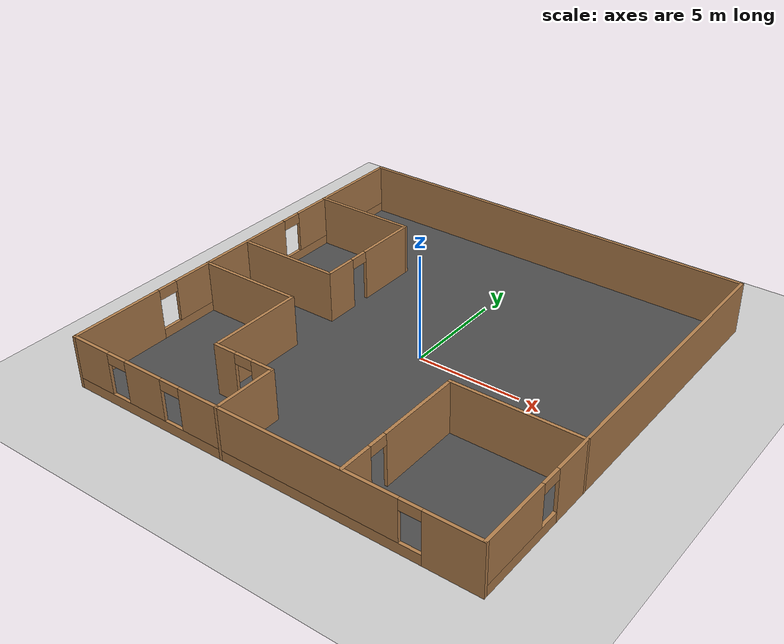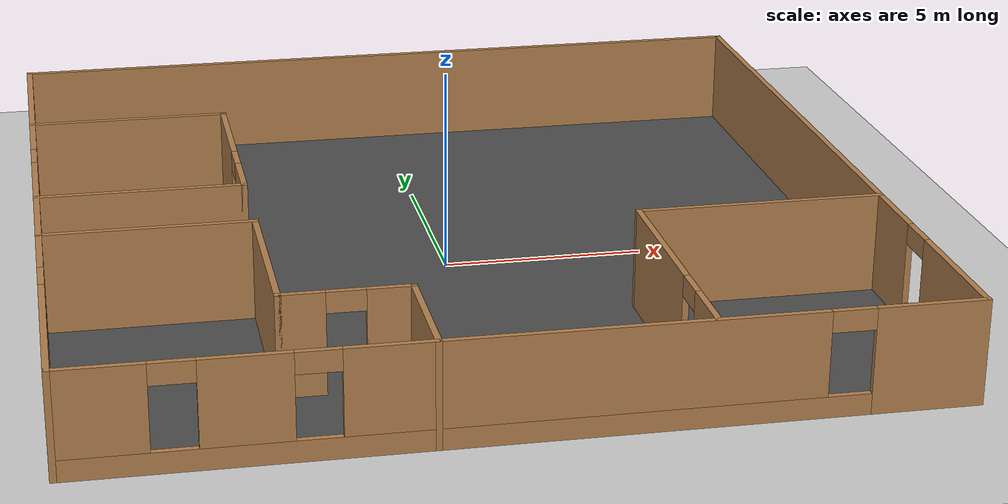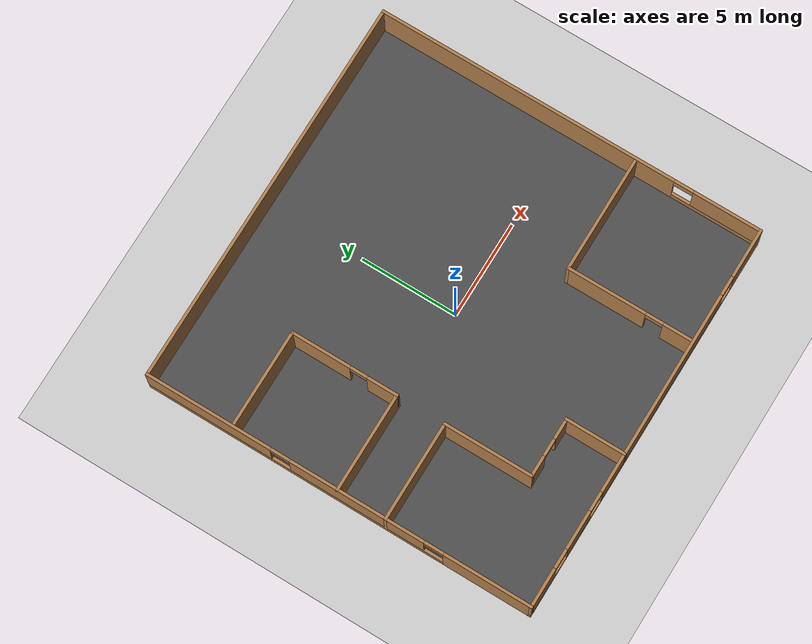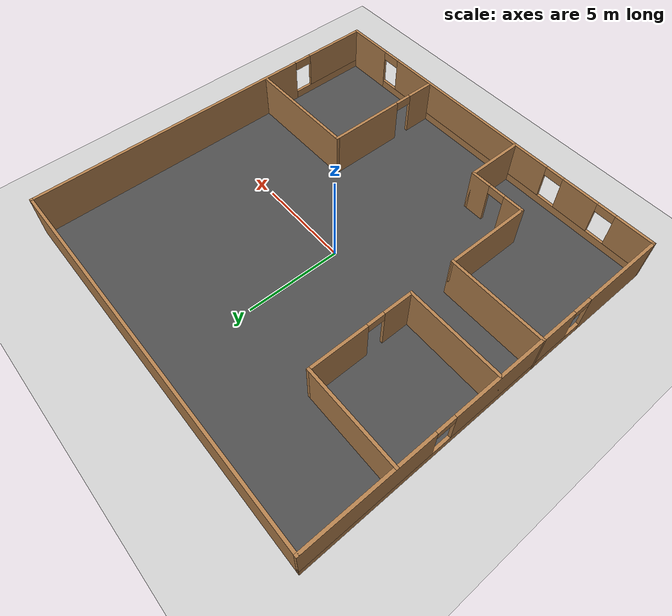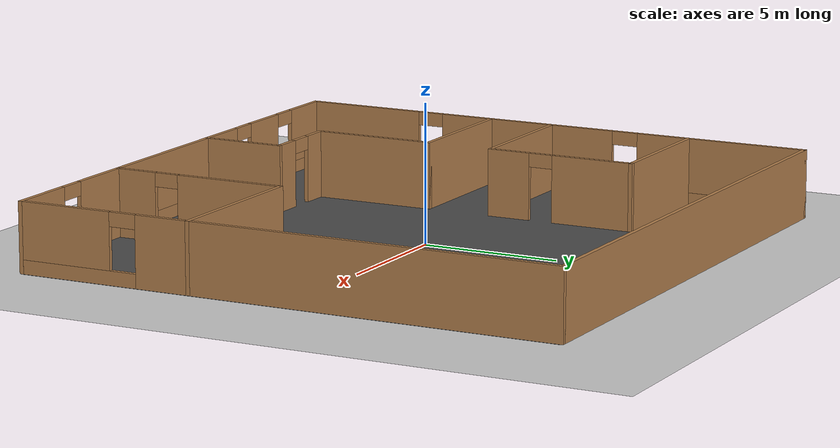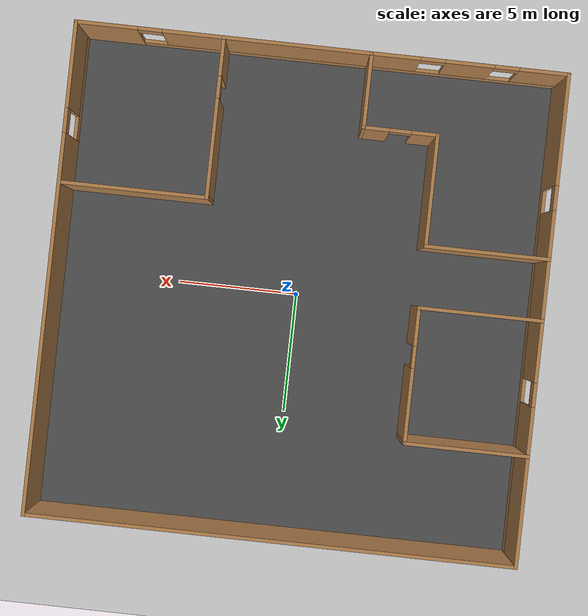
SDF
<sdf version="1.6">
 <world name="default">
  <light name="sun" type="directional">
   <pose>0 0 10 0 -0 0</pose>
   <diffuse>0.8 0.8 0.8 1</diffuse>
   <specular>0.2 0.2 0.2 1</specular>
   <attenuation>
    <range>1000</range>
    <constant>0.9</constant>
    <linear>0.01</linear>
    <quadratic>0.001</quadratic>
   </attenuation>
   <direction>-0.5 0.1 -0.9</direction>
  </light>
  <model name="ground_plane">
   <static>1</static>
   <link name="link">
    <collision name="collision">
     <geometry><plane><normal>0 0 1</normal><size>100 100</size></plane></geometry>
     <surface>
      <contact><collide_bitmask>65535</collide_bitmask></contact>
      <friction><ode><mu>100</mu><mu2>50</mu2></ode></friction>
     </surface>
    </collision>
    <visual name="visual">
     <cast_shadows>0</cast_shadows>
     <geometry><plane><normal>0 0 1</normal><size>100 100</size></plane></geometry>
     <material>
      <script><uri>file://media/materials/scripts/gazebo.material</uri><name>Gazebo/Grey</name></script>
     </material>
    </visual>
   </link>
  </model>
  <gravity>0 0 -9.8</gravity>
  <magnetic_field>6e-06 2.3e-05 -4.2e-05</magnetic_field>
  <atmosphere type="adiabatic"/>
  <physics name="default_physics" default="0" type="ode">
   <max_step_size>0.001</max_step_size>
   <real_time_factor>1</real_time_factor>
   <real_time_update_rate>1000</real_time_update_rate>
  </physics>
  <scene><ambient>0.4 0.4 0.4 1</ambient><background>0.7 0.7 0.7 1</background><shadows>1</shadows></scene>
  <audio><device>default</device></audio>
  <spherical_coordinates>
   <surface_model>EARTH_WGS84</surface_model>
   <latitude_deg>0</latitude_deg>
   <longitude_deg>0</longitude_deg>
   <elevation>0</elevation>
   <heading_deg>0</heading_deg>
  </spherical_coordinates>
  <model name="offlice">
   <link name="Wall_10">
    <pose>4 -6.75 0 0 -0 -1.5708</pose>
    <visual name="Wall_10_Visual_0">
     <pose>-1.2625 0 1.25 0 -0 0</pose>
     <geometry><box><size>4.125 0.15 2.5</size></box></geometry>
     <material>
      <script><uri>file://media/materials/scripts/gazebo.material</uri><name>Gazebo/Wood</name></script>
      <ambient>1 1 1 1</ambient>
     </material>
     <meta><layer>0</layer></meta>
    </visual>
    <collision name="Wall_10_Collision_0">
     <geometry><box><size>4.125 0.15 2.5</size></box></geometry>
     <pose>-1.2625 0 1.25 0 -0 0</pose>
    </collision>
    <visual name="Wall_10_Visual_1">
     <pose>2.5125 0 1.25 0 -0 0</pose>
     <geometry><box><size>1.625 0.15 2.5</size></box></geometry>
     <material>
      <script><uri>file://media/materials/scripts/gazebo.material</uri><name>Gazebo/Wood</name></script>
      <ambient>1 1 1 1</ambient>
     </material>
     <meta><layer>0</layer></meta>
    </visual>
    <collision name="Wall_10_Collision_1">
     <geometry><box><size>1.625 0.15 2.5</size></box></geometry>
     <pose>2.5125 0 1.25 0 -0 0</pose>
    </collision>
    <visual name="Wall_10_Visual_2">
     <pose>1.25 0 2.25 0 -0 0</pose>
     <geometry><box><size>0.9 0.15 0.5</size></box></geometry>
     <material>
      <script><uri>file://media/materials/scripts/gazebo.material</uri><name>Gazebo/Wood</name></script>
      <ambient>1 1 1 1</ambient>
     </material>
     <meta><layer>0</layer></meta>
    </visual>
    <collision name="Wall_10_Collision_2">
     <geometry><box><size>0.9 0.15 0.5</size></box></geometry>
     <pose>1.25 0 2.25 0 -0 0</pose>
    </collision>
   </link>
   <link name="Wall_12">
    <collision name="Wall_12_Collision">
     <geometry><box><size>5.15 0.15 2.5</size></box></geometry>
     <pose>0 0 1.25 0 -0 0</pose>
    </collision>
    <visual name="Wall_12_Visual">
     <pose>0 0 1.25 0 -0 0</pose>
     <geometry><box><size>5.15 0.15 2.5</size></box></geometry>
     <material>
      <script><uri>file://media/materials/scripts/gazebo.material</uri><name>Gazebo/Wood</name></script>
      <ambient>1 1 1 1</ambient>
     </material>
     <meta><layer>0</layer></meta>
    </visual>
    <pose>-7.5 -2.5 0 0 -0 0</pose>
   </link>
   <link name="Wall_13">
    <collision name="Wall_13_Collision">
     <geometry><box><size>4.65 0.15 2.5</size></box></geometry>
     <pose>0 0 1.25 0 -0 0</pose>
    </collision>
    <visual name="Wall_13_Visual">
     <pose>0 0 1.25 0 -0 0</pose>
     <geometry><box><size>4.65 0.15 2.5</size></box></geometry>
     <material>
      <script><uri>file://media/materials/scripts/gazebo.material</uri><name>Gazebo/Wood</name></script>
      <ambient>1 1 1 1</ambient>
     </material>
     <meta><layer>0</layer></meta>
    </visual>
    <pose>-5 -4.75 0 0 -0 -1.5708</pose>
   </link>
   <link name="Wall_14">
    <pose>-3.5 -7 0 0 -0 0</pose>
    <visual name="Wall_14_Visual_0">
     <pose>-1.0125 0 1.25 0 -0 0</pose>
     <geometry><box><size>1.125 0.15 2.5</size></box></geometry>
     <material>
      <script><uri>file://media/materials/scripts/gazebo.material</uri><name>Gazebo/Wood</name></script>
      <ambient>1 1 1 1</ambient>
     </material>
     <meta><layer>0</layer></meta>
    </visual>
    <collision name="Wall_14_Collision_0">
     <geometry><box><size>1.125 0.15 2.5</size></box></geometry>
     <pose>-1.0125 0 1.25 0 -0 0</pose>
    </collision>
    <visual name="Wall_14_Visual_1">
     <pose>1.0125 0 1.25 0 -0 0</pose>
     <geometry><box><size>1.125 0.15 2.5</size></box></geometry>
     <material>
      <script><uri>file://media/materials/scripts/gazebo.material</uri><name>Gazebo/Wood</name></script>
      <ambient>1 1 1 1</ambient>
     </material>
     <meta><layer>0</layer></meta>
    </visual>
    <collision name="Wall_14_Collision_1">
     <geometry><box><size>1.125 0.15 2.5</size></box></geometry>
     <pose>1.0125 0 1.25 0 -0 0</pose>
    </collision>
    <visual name="Wall_14_Visual_2">
     <pose>0 0 2.25 0 -0 0</pose>
     <geometry><box><size>0.9 0.15 0.5</size></box></geometry>
     <material>
      <script><uri>file://media/materials/scripts/gazebo.material</uri><name>Gazebo/Wood</name></script>
      <ambient>1 1 1 1</ambient>
     </material>
     <meta><layer>0</layer></meta>
    </visual>
    <collision name="Wall_14_Collision_2">
     <geometry><box><size>0.9 0.15 0.5</size></box></geometry>
     <pose>0 0 2.25 0 -0 0</pose>
    </collision>
   </link>
   <link name="Wall_15">
    <collision name="Wall_15_Collision">
     <geometry><box><size>3.15 0.15 2.5</size></box></geometry>
     <pose>0 0 1.25 0 -0 0</pose>
    </collision>
    <visual name="Wall_15_Visual">
     <pose>0 0 1.25 0 -0 0</pose>
     <geometry><box><size>3.15 0.15 2.5</size></box></geometry>
     <material>
      <script><uri>file://media/materials/scripts/gazebo.material</uri><name>Gazebo/Wood</name></script>
      <ambient>1 1 1 1</ambient>
     </material>
     <meta><layer>0</layer></meta>
    </visual>
    <pose>-2 -8.5 0 0 -0 -1.5708</pose>
   </link>
   <link name="Wall_17">
    <collision name="Wall_17_Collision">
     <geometry><box><size>5.15 0.15 2.5</size></box></geometry>
     <pose>0 0 1.25 0 -0 0</pose>
    </collision>
    <visual name="Wall_17_Visual">
     <pose>0 0 1.25 0 -0 0</pose>
     <geometry><box><size>5.15 0.15 2.5</size></box></geometry>
     <material>
      <script><uri>file://media/materials/scripts/gazebo.material</uri><name>Gazebo/Wood</name></script>
      <ambient>1 1 1 1</ambient>
     </material>
     <meta><layer>0</layer></meta>
    </visual>
    <pose>-7.5 0 0 0 -0 0</pose>
   </link>
   <link name="Wall_18">
    <pose>-5 2.75 0 0 -0 1.5708</pose>
    <visual name="Wall_18_Visual_0">
     <pose>-2.0125 0 1.25 0 -0 0</pose>
     <geometry><box><size>1.625 0.15 2.5</size></box></geometry>
     <material>
      <script><uri>file://media/materials/scripts/gazebo.material</uri><name>Gazebo/Wood</name></script>
      <ambient>1 1 1 1</ambient>
     </material>
     <meta><layer>0</layer></meta>
    </visual>
    <collision name="Wall_18_Collision_0">
     <geometry><box><size>1.625 0.15 2.5</size></box></geometry>
     <pose>-2.0125 0 1.25 0 -0 0</pose>
    </collision>
    <visual name="Wall_18_Visual_1">
     <pose>1.2625 0 1.25 0 -0 0</pose>
     <geometry><box><size>3.125 0.15 2.5</size></box></geometry>
     <material>
      <script><uri>file://media/materials/scripts/gazebo.material</uri><name>Gazebo/Wood</name></script>
      <ambient>1 1 1 1</ambient>
     </material>
     <meta><layer>0</layer></meta>
    </visual>
    <collision name="Wall_18_Collision_1">
     <geometry><box><size>3.125 0.15 2.5</size></box></geometry>
     <pose>1.2625 0 1.25 0 -0 0</pose>
    </collision>
    <visual name="Wall_18_Visual_2">
     <pose>-0.75 0 2.25 0 -0 0</pose>
     <geometry><box><size>0.9 0.15 0.5</size></box></geometry>
     <material>
      <script><uri>file://media/materials/scripts/gazebo.material</uri><name>Gazebo/Wood</name></script>
      <ambient>1 1 1 1</ambient>
     </material>
     <meta><layer>0</layer></meta>
    </visual>
    <collision name="Wall_18_Collision_2">
     <geometry><box><size>0.9 0.15 0.5</size></box></geometry>
     <pose>-0.75 0 2.25 0 -0 0</pose>
    </collision>
   </link>
   <link name="Wall_19">
    <collision name="Wall_19_Collision">
     <geometry><box><size>5.15 0.15 2.5</size></box></geometry>
     <pose>0 0 1.25 0 -0 0</pose>
    </collision>
    <visual name="Wall_19_Visual">
     <pose>0 0 1.25 0 -0 0</pose>
     <geometry><box><size>5.15 0.15 2.5</size></box></geometry>
     <material>
      <script><uri>file://media/materials/scripts/gazebo.material</uri><name>Gazebo/Wood</name></script>
      <ambient>1 1 1 1</ambient>
     </material>
     <meta><layer>0</layer></meta>
    </visual>
    <pose>-7.5 5.5 0 0 -0 3.14159</pose>
   </link>
   <link name="Wall_3">
    <pose>10 0 0 0 -0 -1.5708</pose>
    <visual name="Wall_3_Visual_0">
     <pose>-2.2875 0 1.25 0 -0 0</pose>
     <geometry><box><size>15.575 0.15 2.5</size></box></geometry>
     <material>
      <script><uri>file://media/materials/scripts/gazebo.material</uri><name>Gazebo/Wood</name></script>
      <ambient>1 1 1 1</ambient>
     </material>
     <meta><layer>0</layer></meta>
    </visual>
    <collision name="Wall_3_Collision_0">
     <geometry><box><size>15.575 0.15 2.5</size></box></geometry>
     <pose>-2.2875 0 1.25 0 -0 0</pose>
    </collision>
    <visual name="Wall_3_Visual_1">
     <pose>7.7875 0 0.25 0 -0 0</pose>
     <geometry><box><size>4.575 0.15 0.5</size></box></geometry>
     <material>
      <script><uri>file://media/materials/scripts/gazebo.material</uri><name>Gazebo/Wood</name></script>
      <ambient>1 1 1 1</ambient>
     </material>
     <meta><layer>0</layer></meta>
    </visual>
    <collision name="Wall_3_Collision_1">
     <geometry><box><size>4.575 0.15 0.5</size></box></geometry>
     <pose>7.7875 0 0.25 0 -0 0</pose>
    </collision>
    <visual name="Wall_3_Visual_2">
     <pose>8.2875 0 1.5 0 -0 0</pose>
     <geometry><box><size>3.575 0.15 2</size></box></geometry>
     <material>
      <script><uri>file://media/materials/scripts/gazebo.material</uri><name>Gazebo/Wood</name></script>
      <ambient>1 1 1 1</ambient>
     </material>
     <meta><layer>0</layer></meta>
    </visual>
    <collision name="Wall_3_Collision_2">
     <geometry><box><size>3.575 0.15 2</size></box></geometry>
     <pose>8.2875 0 1.5 0 -0 0</pose>
    </collision>
    <visual name="Wall_3_Visual_3">
     <pose>6 0 2.25 0 -0 0</pose>
     <geometry><box><size>1 0.15 0.5</size></box></geometry>
     <material>
      <script><uri>file://media/materials/scripts/gazebo.material</uri><name>Gazebo/Wood</name></script>
      <ambient>1 1 1 1</ambient>
     </material>
     <meta><layer>0</layer></meta>
    </visual>
    <collision name="Wall_3_Collision_3">
     <geometry><box><size>1 0.15 0.5</size></box></geometry>
     <pose>6 0 2.25 0 -0 0</pose>
    </collision>
   </link>
   <link name="Wall_4">
    <pose>0 -10 0 0 -0 3.14159</pose>
    <visual name="Wall_4_Visual_0">
     <pose>-8.7875 0 1.25 0 -0 0</pose>
     <geometry><box><size>2.575 0.15 2.5</size></box></geometry>
     <material>
      <script><uri>file://media/materials/scripts/gazebo.material</uri><name>Gazebo/Wood</name></script>
      <ambient>1 1 1 1</ambient>
     </material>
     <meta><layer>0</layer></meta>
    </visual>
    <collision name="Wall_4_Collision_0">
     <geometry><box><size>2.575 0.15 2.5</size></box></geometry>
     <pose>-8.7875 0 1.25 0 -0 0</pose>
    </collision>
    <visual name="Wall_4_Visual_1">
     <pose>1.2875 0 0.25 0 -0 0</pose>
     <geometry><box><size>17.575 0.15 0.5</size></box></geometry>
     <material>
      <script><uri>file://media/materials/scripts/gazebo.material</uri><name>Gazebo/Wood</name></script>
      <ambient>1 1 1 1</ambient>
     </material>
     <meta><layer>0</layer></meta>
    </visual>
    <collision name="Wall_4_Collision_1">
     <geometry><box><size>17.575 0.15 0.5</size></box></geometry>
     <pose>1.2875 0 0.25 0 -0 0</pose>
    </collision>
    <visual name="Wall_4_Visual_2">
     <pose>-1.25 0 1.5 0 -0 0</pose>
     <geometry><box><size>10.5 0.15 2</size></box></geometry>
     <material>
      <script><uri>file://media/materials/scripts/gazebo.material</uri><name>Gazebo/Wood</name></script>
      <ambient>1 1 1 1</ambient>
     </material>
     <meta><layer>0</layer></meta>
    </visual>
    <collision name="Wall_4_Collision_2">
     <geometry><box><size>10.5 0.15 2</size></box></geometry>
     <pose>-1.25 0 1.5 0 -0 0</pose>
    </collision>
    <visual name="Wall_4_Visual_3">
     <pose>6 0 1.5 0 -0 0</pose>
     <geometry><box><size>2 0.15 2</size></box></geometry>
     <material>
      <script><uri>file://media/materials/scripts/gazebo.material</uri><name>Gazebo/Wood</name></script>
      <ambient>1 1 1 1</ambient>
     </material>
     <meta><layer>0</layer></meta>
    </visual>
    <collision name="Wall_4_Collision_3">
     <geometry><box><size>2 0.15 2</size></box></geometry>
     <pose>6 0 1.5 0 -0 0</pose>
    </collision>
    <visual name="Wall_4_Visual_4">
     <pose>9.0375 0 1.5 0 -0 0</pose>
     <geometry><box><size>2.075 0.15 2</size></box></geometry>
     <material>
      <script><uri>file://media/materials/scripts/gazebo.material</uri><name>Gazebo/Wood</name></script>
      <ambient>1 1 1 1</ambient>
     </material>
     <meta><layer>0</layer></meta>
    </visual>
    <collision name="Wall_4_Collision_4">
     <geometry><box><size>2.075 0.15 2</size></box></geometry>
     <pose>9.0375 0 1.5 0 -0 0</pose>
    </collision>
    <visual name="Wall_4_Visual_5">
     <pose>-7 0 2.25 0 -0 0</pose>
     <geometry><box><size>1 0.15 0.5</size></box></geometry>
     <material>
      <script><uri>file://media/materials/scripts/gazebo.material</uri><name>Gazebo/Wood</name></script>
      <ambient>1 1 1 1</ambient>
     </material>
     <meta><layer>0</layer></meta>
    </visual>
    <collision name="Wall_4_Collision_5">
     <geometry><box><size>1 0.15 0.5</size></box></geometry>
     <pose>-7 0 2.25 0 -0 0</pose>
    </collision>
    <visual name="Wall_4_Visual_6">
     <pose>4.5 0 2.25 0 -0 0</pose>
     <geometry><box><size>1 0.15 0.5</size></box></geometry>
     <material>
      <script><uri>file://media/materials/scripts/gazebo.material</uri><name>Gazebo/Wood</name></script>
      <ambient>1 1 1 1</ambient>
     </material>
     <meta><layer>0</layer></meta>
    </visual>
    <collision name="Wall_4_Collision_6">
     <geometry><box><size>1 0.15 0.5</size></box></geometry>
     <pose>4.5 0 2.25 0 -0 0</pose>
    </collision>
    <visual name="Wall_4_Visual_7">
     <pose>7.5 0 2.25 0 -0 0</pose>
     <geometry><box><size>1 0.15 0.5</size></box></geometry>
     <material>
      <script><uri>file://media/materials/scripts/gazebo.material</uri><name>Gazebo/Wood</name></script>
      <ambient>1 1 1 1</ambient>
     </material>
     <meta><layer>0</layer></meta>
    </visual>
    <collision name="Wall_4_Collision_7">
     <geometry><box><size>1 0.15 0.5</size></box></geometry>
     <pose>7.5 0 2.25 0 -0 0</pose>
    </collision>
   </link>
   <link name="Wall_5">
    <pose>-10 0 0 0 -0 1.5708</pose>
    <visual name="Wall_5_Visual_0">
     <pose>-7.7875 0 1.25 0 -0 0</pose>
     <geometry><box><size>4.575 0.15 2.5</size></box></geometry>
     <material>
      <script><uri>file://media/materials/scripts/gazebo.material</uri><name>Gazebo/Wood</name></script>
      <ambient>1 1 1 1</ambient>
     </material>
     <meta><layer>0</layer></meta>
    </visual>
    <collision name="Wall_5_Collision_0">
     <geometry><box><size>4.575 0.15 2.5</size></box></geometry>
     <pose>-7.7875 0 1.25 0 -0 0</pose>
    </collision>
    <visual name="Wall_5_Visual_1">
     <pose>2.2875 0 0.25 0 -0 0</pose>
     <geometry><box><size>15.575 0.15 0.5</size></box></geometry>
     <material>
      <script><uri>file://media/materials/scripts/gazebo.material</uri><name>Gazebo/Wood</name></script>
      <ambient>1 1 1 1</ambient>
     </material>
     <meta><layer>0</layer></meta>
    </visual>
    <collision name="Wall_5_Collision_1">
     <geometry><box><size>15.575 0.15 0.5</size></box></geometry>
     <pose>2.2875 0 0.25 0 -0 0</pose>
    </collision>
    <visual name="Wall_5_Visual_2">
     <pose>-1 0 1.5 0 -0 0</pose>
     <geometry><box><size>7 0.15 2</size></box></geometry>
     <material>
      <script><uri>file://media/materials/scripts/gazebo.material</uri><name>Gazebo/Wood</name></script>
      <ambient>1 1 1 1</ambient>
     </material>
     <meta><layer>0</layer></meta>
    </visual>
    <collision name="Wall_5_Collision_2">
     <geometry><box><size>7 0.15 2</size></box></geometry>
     <pose>-1 0 1.5 0 -0 0</pose>
    </collision>
    <visual name="Wall_5_Visual_3">
     <pose>6.7875 0 1.5 0 -0 0</pose>
     <geometry><box><size>6.575 0.15 2</size></box></geometry>
     <material>
      <script><uri>file://media/materials/scripts/gazebo.material</uri><name>Gazebo/Wood</name></script>
      <ambient>1 1 1 1</ambient>
     </material>
     <meta><layer>0</layer></meta>
    </visual>
    <collision name="Wall_5_Collision_3">
     <geometry><box><size>6.575 0.15 2</size></box></geometry>
     <pose>6.7875 0 1.5 0 -0 0</pose>
    </collision>
    <visual name="Wall_5_Visual_4">
     <pose>-5 0 2.25 0 -0 0</pose>
     <geometry><box><size>1 0.15 0.5</size></box></geometry>
     <material>
      <script><uri>file://media/materials/scripts/gazebo.material</uri><name>Gazebo/Wood</name></script>
      <ambient>1 1 1 1</ambient>
     </material>
     <meta><layer>0</layer></meta>
    </visual>
    <collision name="Wall_5_Collision_4">
     <geometry><box><size>1 0.15 0.5</size></box></geometry>
     <pose>-5 0 2.25 0 -0 0</pose>
    </collision>
    <visual name="Wall_5_Visual_5">
     <pose>3 0 2.25 0 -0 0</pose>
     <geometry><box><size>1 0.15 0.5</size></box></geometry>
     <material>
      <script><uri>file://media/materials/scripts/gazebo.material</uri><name>Gazebo/Wood</name></script>
      <ambient>1 1 1 1</ambient>
     </material>
     <meta><layer>0</layer></meta>
    </visual>
    <collision name="Wall_5_Collision_5">
     <geometry><box><size>1 0.15 0.5</size></box></geometry>
     <pose>3 0 2.25 0 -0 0</pose>
    </collision>
   </link>
   <link name="Wall_7">
    <collision name="Wall_7_Collision">
     <geometry><box><size>20.15 0.15 2.5</size></box></geometry>
     <pose>0 0 1.25 0 -0 0</pose>
    </collision>
    <visual name="Wall_7_Visual">
     <pose>0 0 1.25 0 -0 0</pose>
     <geometry><box><size>20.15 0.15 2.5</size></box></geometry>
     <material>
      <script><uri>file://media/materials/scripts/gazebo.material</uri><name>Gazebo/Wood</name></script>
      <ambient>1 1 1 1</ambient>
     </material>
     <meta><layer>0</layer></meta>
    </visual>
    <pose>0 10 0 0 -0 0</pose>
   </link>
   <link name="Wall_9">
    <collision name="Wall_9_Collision">
     <geometry><box><size>6.15 0.15 2.5</size></box></geometry>
     <pose>0 0 1.25 0 -0 0</pose>
    </collision>
    <visual name="Wall_9_Visual">
     <pose>0 0 1.25 0 -0 0</pose>
     <geometry><box><size>6.15 0.15 2.5</size></box></geometry>
     <material>
      <script><uri>file://media/materials/scripts/gazebo.material</uri><name>Gazebo/Wood</name></script>
      <ambient>1 1 1 1</ambient>
     </material>
     <meta><layer>0</layer></meta>
    </visual>
    <pose>7 -3.5 0 0 -0 3.14159</pose>
   </link>
   <static>1</static>
  </model>
  <model name="asphalt_plane">
   <static>1</static>
   <link name="link">
    <collision name="collision"><geometry><box><size>20 20 0.1</size></box></geometry></collision>
    <visual name="visual">
     <cast_shadows>0</cast_shadows>
     <geometry><box><size>20 20 0.1</size></box></geometry>
     <material>
      <script>
       <uri>model://asphalt_plane/materials/scripts</uri>
       <uri>model://asphalt_plane/materials/textures</uri>
       <name>vrc/asphalt</name>
      </script>
     </material>
    </visual>
   </link>
  </model>
 </world>
</sdf>
